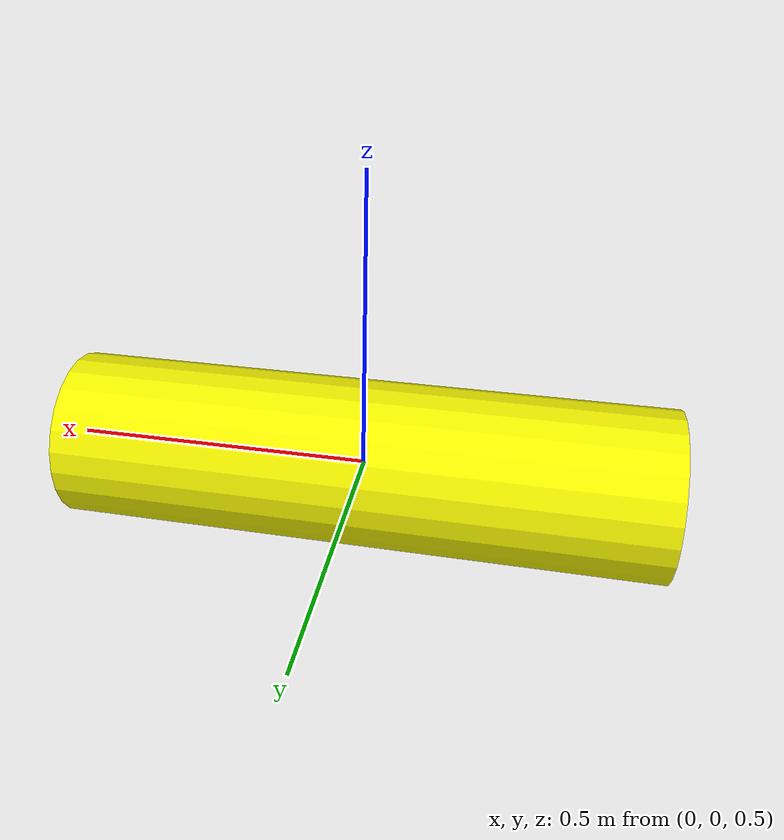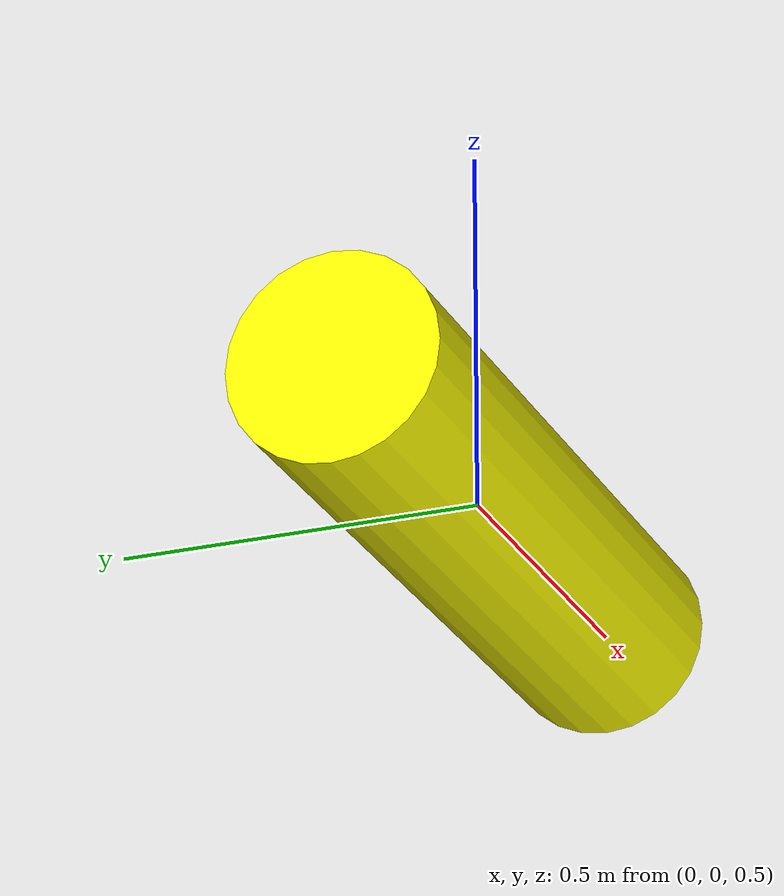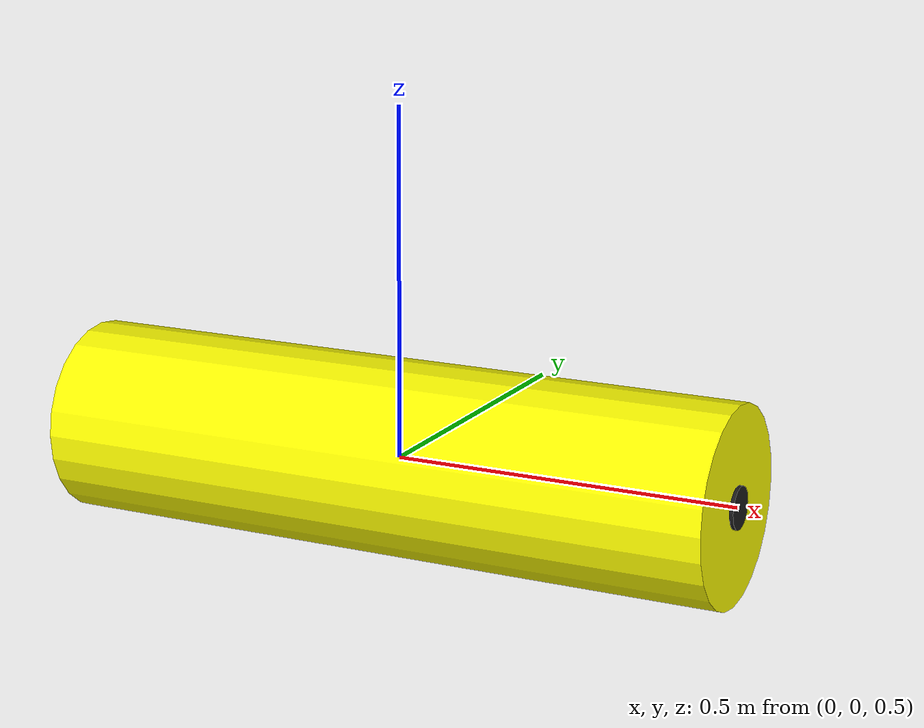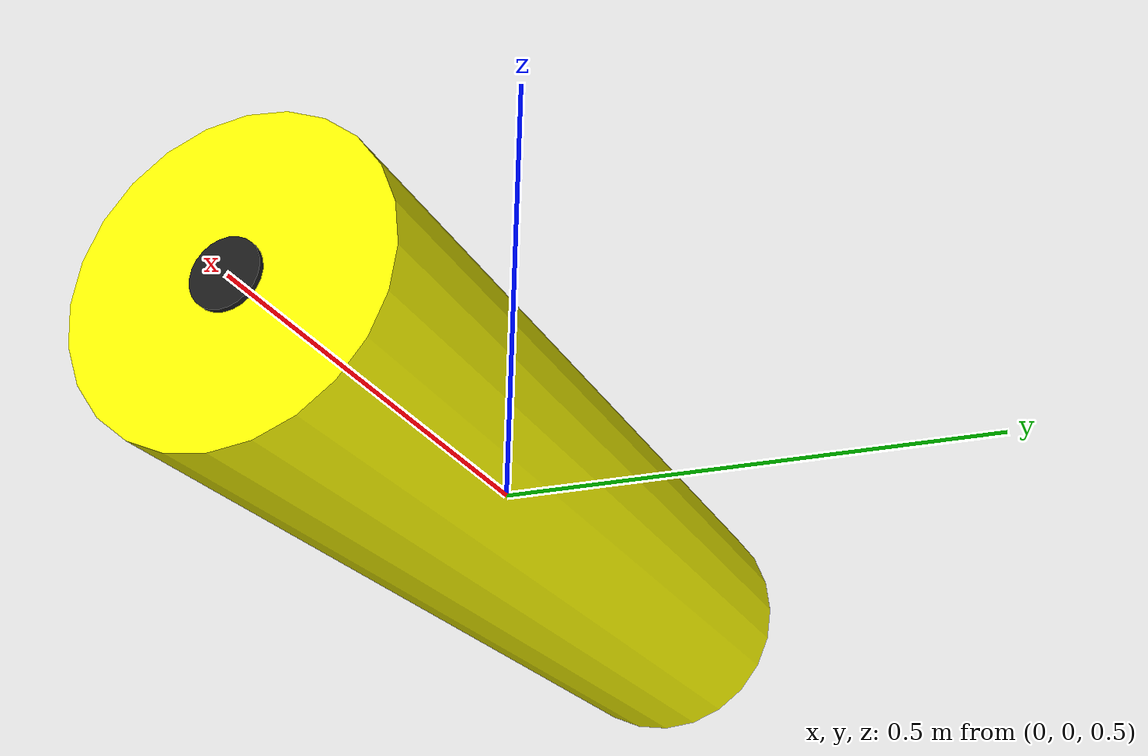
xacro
<?xml version="1.0"?>
<robot xmlns:xacro="http://www.ros.org/wiki/xacro">

  <link name="base_footprint"/>

  <xacro:property name="p" value="3.141592653589793"/>
  <xacro:property name="auv_volume"  value="0.06157521601"/>
  <xacro:property name="auv_length"  value="1.0"/>
  <xacro:property name="auv_width"   value="0.14"/>
  <xacro:property name="auv_height"  value="0.14"/>
  <xacro:property name="auv_cob" value="0 0 0.07"/>

  <xacro:property name="R"          value="0.03" />
  <xacro:property name="W"          value="0.01" />

  <material name="yellow"> <color rgba="1.0 1.0 0.0 1.0"/></material>
  <material name="black"><color rgba="0.1 0.1 0.1 1.0"/></material>

  <link name="body_link">
    <visual>
      <origin xyz="0 0 0" rpy="0  0 0"/>
      <geometry>
        <cylinder radius="${auv_width}" length="${auv_length}"/>
      </geometry>
      <material name="yellow"/>
    </visual>

    <collision>
      <origin xyz="0 0 0" rpy="0 0 0"/>
      <geometry>
        <cylinder radius="${auv_width}" length="${auv_length}"/>
      </geometry>
    </collision>

    <inertial>
      <origin xyz="0 0 0" rpy="0 0 0"/>
      <mass value="61.6"/>
      <inertia ixx="2.291666" ixy="0" ixz="0" iyy="4.125" iyz="0" izz="4.766652"/>
    </inertial>
  </link>

  <joint name="base_joint" type="fixed">
    <parent link="base_footprint"/>
    <child  link="body_link"/>
    <origin xyz="0 0 0.5" rpy="0 ${0.5*p} 0"/>
  </joint>

  <link name="thruster_link">
    <inertial>
      <origin xyz="0 0 0" rpy="0 0 0"/>
      <mass value="0.1"/>
      <inertia ixx="0.0001866667" ixy="0" ixz="0" iyy="0.0001866667" iyz="0" izz="0.00036"/>
    </inertial>

    <visual>
      <origin xyz="0 0 0" rpy="0 0 0"/>
      <geometry>
        <cylinder radius="${R}" length="${W}"/>
      </geometry>
      <material name="black"/>
    </visual>

    <collision>
      <origin xyz="0 0 0" rpy="0 0 0"/>
      <geometry>
        <cylinder radius="${R}" length="${W}"/>
      </geometry>
    </collision>
  </link>

  <joint name="thrust_joint" type="continuous">
    <parent link="body_link"/>
    <child link="thruster_link"/>
    <origin rpy="0 0 0" xyz="0 0 ${auv_length/2}"/>
    <axis xyz="0 0 1"/>
  </joint>

</robot>
